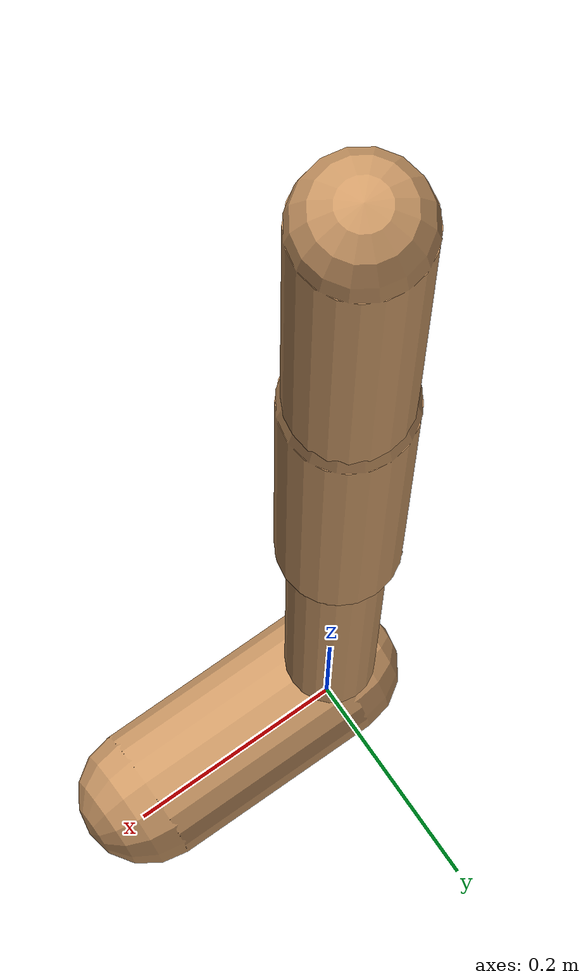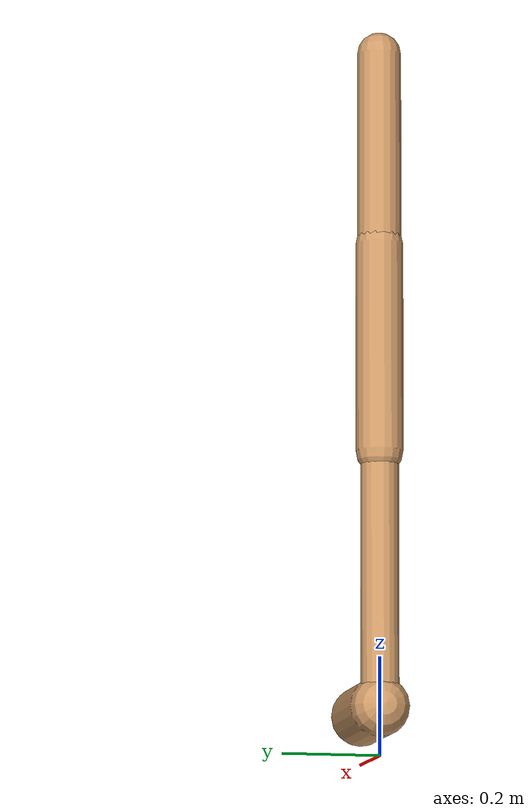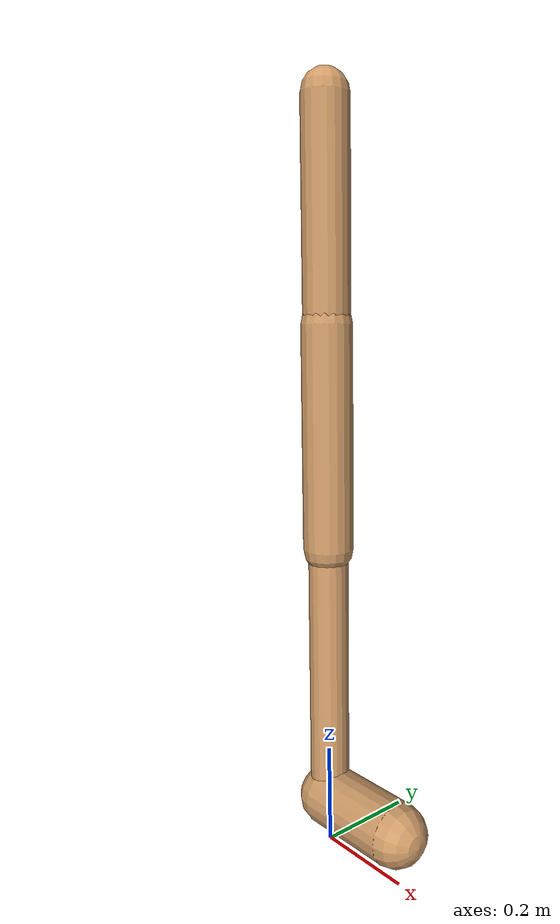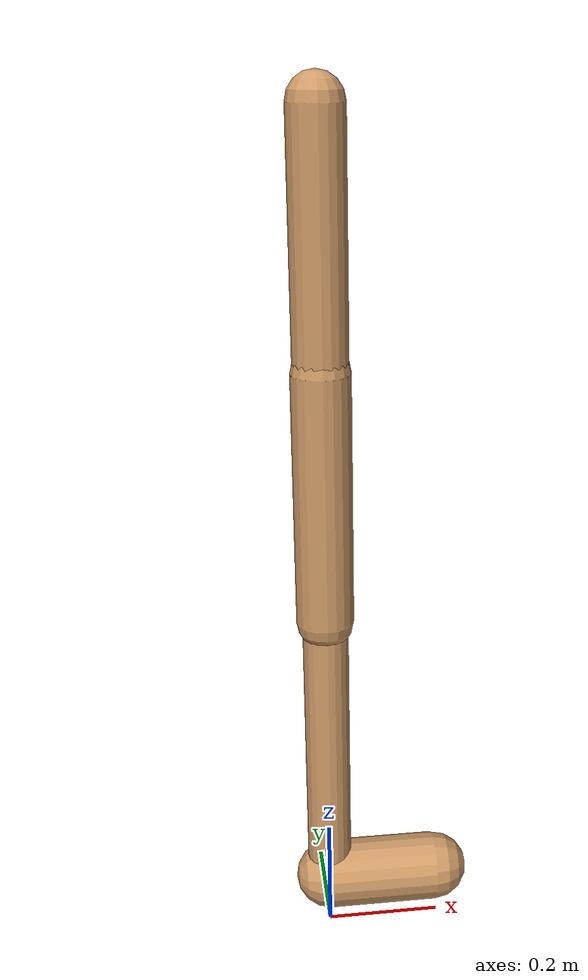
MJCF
<mujoco model="walker2d">
  <compiler angle="degree" coordinate="global" inertiafromgeom="true" />
  <default>
    <joint armature="0.01" damping=".1" limited="true" />
    <geom conaffinity="0" condim="3" contype="1" density="1000" friction="0.8 .1 .1" rgba="0.8 0.6 .4 1" />
  </default>
  <option integrator="RK4" timestep="0.002" />
  <worldbody>

    <body name="torso" pos="0 0 -0.04349470025121608">
      <joint armature="0" axis="1 0 0" damping="0" limited="false" name="ignorex" pos="0 0 0" stiffness="0" type="slide" />
      <joint armature="0" axis="0 0 1" damping="0" limited="false" name="ignorez" pos="0 0 0" ref="1.25" stiffness="0" type="slide" />
      <joint armature="0" axis="0 1 0" damping="0" limited="false" name="ignorey" pos="0 0 0" stiffness="0" type="hinge" />
      <geom fromto="0 0 1.45 0 0 1.05" name="torso_geom" size="0.045283356804976624" type="capsule" />
      <body name="thigh">
        <joint axis="0 -1 0" name="thigh_joint" pos="0 0 1.05" range="-150 0" type="hinge" />
        <geom fromto="0.0 0.0 1.05 0.0 0.0 0.620602752750576" name="thigh_geom" size="0.04874384508380664" type="capsule" />
        <body name="leg" pos="0.0 0.0 0.020602752750575992">
          <joint axis="0 -1 0" name="leg_joint" pos="0 0 0.6" range="-150 0" type="hinge" />
          <geom fromto="0.0 0.0 0.6 0.0 0.0 0.12289194750064004" name="leg_geom" size="0.03899507606704532" type="capsule" />
          <body name="foot" pos="0.0 0.0 0.02289194750064004">
            <joint axis="0 -1 0" name="foot_joint" pos="0 0 0.1" range="-45 45" type="hinge" />
            <geom fromto="0.0 0.0 0.1 0.19234509077825027 0.0 0.1" name="foot_geom" size="0.06092277919427304" type="capsule" />
          </body>
        </body>
      </body>

      <body name="thigh_left">
        <joint axis="0 -1 0" name="thigh_left_joint" pos="0 0 1.05" range="-150 0" type="hinge" />
        <geom fromto="0.0 0.0 1.05 0.0 0.0 0.620602752750576" name="thigh_left_geom" rgba=".7 .3 .6 1" size="0.04874384508380664" type="capsule" />
        <body name="leg_left" pos="0.0 0.0 0.020602752750575992">
          <joint axis="0 -1 0" name="leg_left_joint" pos="0 0 0.6" range="-150 0" type="hinge" />
          <geom fromto="0.0 0.0 0.6 0.0 0.0 0.12289194750064004" name="leg_left_geom" rgba=".7 .3 .6 1" size="0.03899507606704532" type="capsule" />
          <body name="foot_left" pos="0.0 0.0 0.02289194750064004">
            <joint axis="0 -1 0" name="foot_left_joint" pos="0 0 0.1" range="-45 45" type="hinge" />
            <geom fromto="0.0 0.0 0.1 0.19234509077825027 0.0 0.1" name="foot_left_geom" rgba=".7 .3 .6 1" size="0.06092277919427304" type="capsule" />
          </body>
        </body>
      </body>
    </body>
  </worldbody>
  <actuator>

    <motor ctrllimited="true" ctrlrange="-1.0 1.0" gear="100" joint="thigh_joint" />
    <motor ctrllimited="true" ctrlrange="-1.0 1.0" gear="100" joint="leg_joint" />
    <motor ctrllimited="true" ctrlrange="-1.0 1.0" gear="100" joint="foot_joint" />
    <motor ctrllimited="true" ctrlrange="-1.0 1.0" gear="100" joint="thigh_left_joint" />
    <motor ctrllimited="true" ctrlrange="-1.0 1.0" gear="100" joint="leg_left_joint" />
    <motor ctrllimited="true" ctrlrange="-1.0 1.0" gear="100" joint="foot_left_joint" />

  </actuator>
</mujoco>
